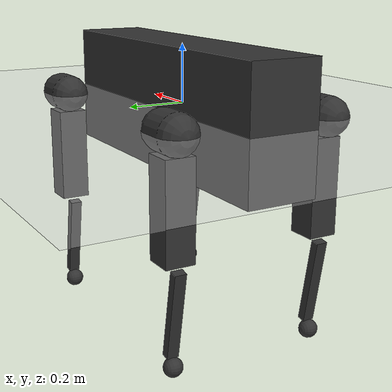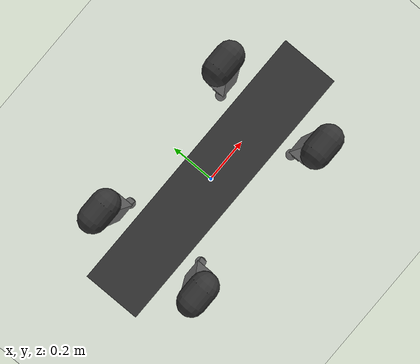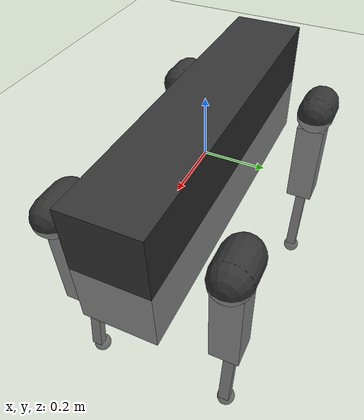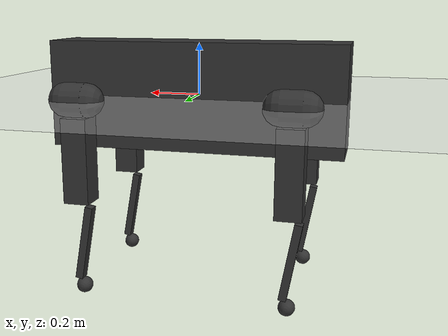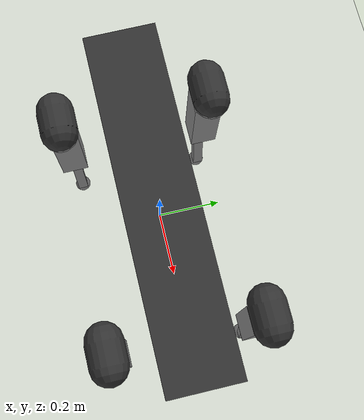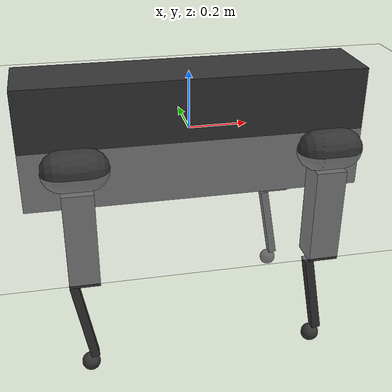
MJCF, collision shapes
<mujoco model="hyqreal2 scene">
      <include file="hyqreal2.xml"/>

      <statistic center="0 0 0.1" extent="0.8"/>

      <visual>
            <headlight diffuse="0.4 0.4 0.4" ambient="0.25 0.25 0.25" specular="0.25 0.25 0.25"/>
            <rgba haze="0.99 0.99 0.99 1"/>
            <global azimuth="-130" elevation="-20"/>
      </visual>
      <asset>
            <texture
                  type="skybox"
                  builtin="gradient"
                  rgb1="0.99 0.99 0.99"
                  rgb2="0.99 0.99 0.99"
                  width="512"
                  height="3072"
            />
            <texture
                  type="2d"
                  name="groundplane"
                  builtin="checker"
                  mark="edge"
                  rgb1="0.93 0.93 0.93"
                  rgb2="0.93 0.93 0.93"
                  markrgb="0 0 0"
                  width="250"
                  height="250"
            />
            <material name="groundplane" texture="groundplane" texuniform="true" texrepeat="5 5" reflectance="0.0"/>

      </asset>

      <worldbody>
            <light pos="0 0 5.0" dir="0 0 -1" directional="true" castshadow="false"/>

            <geom name="floor" size="0 0 0.05" type="plane" material="groundplane"/>
      </worldbody>
</mujoco>

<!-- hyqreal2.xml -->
<mujoco model="hyqreal2_description">
  <compiler angle="radian"/>

  <default>
      <joint damping="0.6" armature="0.01" frictionloss="0.2"/>

      <default class="visual">
          <geom type="mesh" contype="0" conaffinity="0" group="2"/>
      </default>

      <default class="collision">
          <geom group="3" rgba="0.2 0.2 0.2 0.5"/>
      </default>

  </default>

  <asset>
    <mesh name="torso" file="assets/torso.stl" scale="0.001 0.001 0.001"/>
    <mesh name="upper_leg_visual" file="assets/upper_leg_visual.stl" scale="0.001 0.001 0.001"/>
    <mesh name="lower_leg_visual" file="assets/lower_leg_visual.stl" scale="0.001 0.001 0.001"/>
    <mesh name="upper_leg_visual_mirrored" file="assets/upper_leg_visual_mirrored.stl" scale="0.001 0.001 0.001"/>
  </asset>

  <worldbody>
    <body name="base">
      <inertial pos="0.0015 0.0019 -0.0014" quat="-0.0153338 0.706671 -0.0152992 0.70721" mass="83.07" diaginertia="9.46 9.36 2.42"/>
      <joint name="floating_base" type="free" limited="false" actuatorfrclimited="false"/>

      <!-- base visual and collision -->
      <geom class="visual" type="mesh" mesh="torso" pos="0 0 0" quat="0 0 0 1" rgba="0.3 0.3 0.3 1"/>
      <geom class="collision" type="box" size="0.58 0.12 0.21"/>

      <!-- pos="0.4042 0.1505 0" -->
      <body name="FL_hip" pos="0.4042 0.1005 0" quat="0 0.707107 0 -0.707107">
        <inertial pos="-0.0291805 -0.0025707 0.0009034" quat="0.633323 0.721694 0.0652678 0.271663" mass="5.07" diaginertia="0.00531613 0.00492843 0.0047808"/>
        <joint name="FL_hip_joint" pos="0 0 0" axis="0 0 1" range="-0.733038 0.401426" actuatorfrcrange="-150 150"/>

        <!-- FL hip collision -->
        <geom class="collision" type="capsule" size="0.066 0.0409" pos="0 -0.17 0"/>

        <body name="FL_thigh" pos="0 -0.1636 0" quat="0.707107 0.707107 0 0">
          <inertial pos="0.0659 0.0099 -0.0426" quat="0.332192 0.679861 0.348926 0.55289" mass="4.627" diaginertia="0.0841688 0.0797647 0.0139666"/>
          <joint name="FL_thigh_joint" pos="0 0 0" axis="0 0 1" range="0.261799 2.18166" actuatorfrcrange="-250 250"/>

          <!-- FL thigh visual and collision -->
          <geom class="visual" type="mesh" mesh="upper_leg_visual" rgba="1 0.64 0 1"/>
          <geom class="collision" type="box" size="0.165 0.05 0.05" pos="0.23 0 0."/>

          <body name="FL_calf" pos="0.363 0 0">
            <inertial pos="0.273618 -0.00998183 2.57963e-05" quat="0.00662124 0.707 -0.00655672 0.707152" mass="1.2089" diaginertia="0.0483041 0.047405 0.00115536"/>
            <joint name="FL_calf_joint" pos="0 0 0" axis="0 0 1" range="-2.77001 -0.669857" actuatorfrcrange="-350 350"/>

            <!-- FL calf visual and collision -->
            <geom class="visual" type="mesh" mesh="lower_leg_visual" rgba="0.3 0.3 0.3 1"/>
            <geom class="collision" type="box" size="0.15 0.015 0.02" pos="0.2 0.01 0." quat="0.9962 0 0 -0.0872" />

            <body name="FL_foot" pos="0.38 0 0">
                <inertial pos="0 0 0" mass="0.02" diaginertia="8.192e-06 8.192e-06 8.192e-06"/>
                <!-- FL_foot only collision -->
                <geom class="collision" type="sphere" name="FL" size="0.032"/>
            </body>
          </body>
        </body>
      </body>

      <body name="FR_hip" pos="0.4042 -0.1005 0" quat="0.707107 0 0.707107 0">
        <inertial pos="-0.0291805 -0.0025707 0.0009034" quat="0.633323 0.721694 0.0652678 0.271663" mass="5.07" diaginertia="0.00531613 0.00492843 0.0047808"/>
        <joint name="FR_hip_joint" pos="0 0 0" axis="0 0 1" range="-0.733038 0.401426" actuatorfrcrange="-150 150"/>

        <!-- FR hip collision -->
        <geom class="collision" type="capsule" size="0.066 0.0409" pos="0 -0.17 0"/>

        <body name="FR_thigh" pos="0 -0.1636 0" quat="0.707107 -0.707107 0 0">
          <inertial pos="0.0659 0.0099 0.0426" quat="0.679861 0.332192 0.55289 0.348926" mass="4.627" diaginertia="0.0841688 0.0797647 0.0139666"/>
          <joint name="FR_thigh_joint" pos="0 0 0" axis="0 0 1" range="0.261799 2.18166" actuatorfrcrange="-250 250"/>

          <!-- FR thigh visual and collision -->
          <geom class="visual" type="mesh" mesh="upper_leg_visual_mirrored" rgba="1 0.64 0 1"/>
          <geom class="collision" type="box" size="0.165 0.05 0.05" pos="0.23 0 0."/>

          <body name="FR_calf" pos="0.363 0 0">
            <inertial pos="0.273618 -0.00998183 2.57963e-05" quat="0.00662124 0.707 -0.00655672 0.707152" mass="1.2089" diaginertia="0.0483041 0.047405 0.00115536"/>
            <joint name="FR_calf_joint" pos="0 0 0" axis="0 0 1" range="-2.77001 -0.669857" actuatorfrcrange="-350 350"/>

            <!-- FR calf visual and collision -->
            <geom class="visual" type="mesh" mesh="lower_leg_visual" rgba="0.3 0.3 0.3 1"/>
            <geom class="collision" type="box" size="0.15 0.015 0.02" pos="0.2 0.01 0." quat="0.9962 0 0 -0.0872" />

            <body name="FR_foot" pos="0.38 0 0">
                <inertial pos="0 0 0" mass="0.02" diaginertia="8.192e-06 8.192e-06 8.192e-06"/>
                <!-- FR_foot only collision -->
                <geom class="collision" type="sphere" name="FR" size="0.032"/>
            </body>
          </body>
        </body>
      </body>

      <body name="RL_hip" pos="-0.4042 0.1005 0" quat="0 0.707107 0 -0.707107">
        <inertial pos="-0.0291805 -0.0025707 0.0009034" quat="0.633323 0.721694 0.0652678 0.271663" mass="5.07" diaginertia="0.00531613 0.00492843 0.0047808"/>
        <joint name="RL_hip_joint" pos="0 0 0" axis="0 0 1" range="-0.733038 0.401426" actuatorfrcrange="-150 150"/>

        <!-- RL hip collision -->
        <geom class="collision" type="capsule" size="0.066 0.0409" pos="0 -0.17 0"/>

        <body name="RL_thigh" pos="0 -0.1636 0" quat="0.707107 0.707107 0 0">
          <inertial pos="0.0659 0.0099 -0.0426" quat="0.332192 0.679861 0.348926 0.55289" mass="4.627" diaginertia="0.0841688 0.0797647 0.0139666"/>
          <joint name="RL_thigh_joint" pos="0 0 0" axis="0 0 1" range="0.261799 2.18166" actuatorfrcrange="-250 250"/>

          <!-- RL thigh collision -->
          <geom class="visual" type="mesh" mesh="upper_leg_visual" rgba="1 0.64 0 1"/>
          <geom class="collision" type="box" size="0.165 0.05 0.05" pos="0.23 0 0."/>

          <body name="RL_calf" pos="0.363 0 0">
            <inertial pos="0.273618 -0.00998183 2.57963e-05" quat="0.00662124 0.707 -0.00655672 0.707152" mass="1.2089" diaginertia="0.0483041 0.047405 0.00115536"/>
            <joint name="RL_calf_joint" pos="0 0 0" axis="0 0 1" range="-2.77001 -0.669857" actuatorfrcrange="-350 350"/>

            <!-- RL calf visual and collision -->
            <geom class="visual" type="mesh" mesh="lower_leg_visual" rgba="0.3 0.3 0.3 1"/>
            <geom class="collision" type="box" size="0.15 0.015 0.02" pos="0.2 0.01 0." quat="0.9962 0 0 -0.0872" />

            <body name="RL_foot" pos="0.38 0 0">
                <inertial pos="0 0 0" mass="0.02" diaginertia="8.192e-06 8.192e-06 8.192e-06"/>
                <!-- RL_foot only collision -->
                <geom class="collision" type="sphere" name="RL" size="0.032"/>
            </body>
          </body>
        </body>
      </body>

      <body name="RR_hip" pos="-0.4042 -0.1005 0" quat="0.707107 0 0.707107 0">
        <inertial pos="-0.0291805 -0.0025707 0.0009034" quat="0.633323 0.721694 0.0652678 0.271663" mass="5.07" diaginertia="0.00531613 0.00492843 0.0047808"/>
        <joint name="RR_hip_joint" pos="0 0 0" axis="0 0 1" range="-0.733038 0.401426" actuatorfrcrange="-150 150"/>

        <!-- RR hip collision -->
        <geom class="collision" type="capsule" size="0.066 0.0409" pos="0 -0.17 0"/>

        <body name="RR_thigh" pos="0 -0.1636 0" quat="0.707107 -0.707107 0 0">
          <inertial pos="0.0659 0.0099 0.0426" quat="0.679861 0.332192 0.55289 0.348926" mass="4.627" diaginertia="0.0841688 0.0797647 0.0139666"/>
          <joint name="RR_thigh_joint" pos="0 0 0" axis="0 0 1" range="0.261799 2.18166" actuatorfrcrange="-250 250"/>

          <!-- RR thigh collision -->
          <geom class="visual" type="mesh" mesh="upper_leg_visual_mirrored" rgba="1 0.64 0 1"/>
          <geom class="collision" type="box" size="0.165 0.05 0.05" pos="0.23 0 0."/>

          <body name="RR_calf" pos="0.363 0 0">
            <inertial pos="0.273618 -0.00998183 2.57963e-05" quat="0.00662124 0.707 -0.00655672 0.707152" mass="1.2089" diaginertia="0.0483041 0.047405 0.00115536"/>
            <joint name="RR_calf_joint" pos="0 0 0" axis="0 0 1" range="-2.77001 -0.669857" actuatorfrcrange="-350 350"/>

            <!-- RR calf visual and collision -->
            <geom class="visual" type="mesh" mesh="lower_leg_visual" rgba="0.3 0.3 0.3 1"/>
            <geom class="collision" type="box" size="0.15 0.015 0.02" pos="0.2 0.01 0." quat="0.9962 0 0 -0.0872" />

            <body name="RR_foot" pos="0.38 0 0">
                <inertial pos="0 0 0" mass="0.02" diaginertia="8.192e-06 8.192e-06 8.192e-06"/>
                <!-- RR_foot only collision -->
                <geom class="collision" type="sphere" name="RR" size="0.032"/>
            </body>
          </body>
        </body>
      </body>
    </body>
  </worldbody>

  <actuator>
        <motor name="FL_hip" ctrlrange="-173.0 173.0" joint="FL_hip_joint"/>
        <motor name="FL_thigh" ctrlrange="-208 208" joint="FL_thigh_joint"/>
        <motor name="FL_calf" ctrlrange="-249 249" joint="FL_calf_joint"/>

        <motor name="FR_hip" ctrlrange="-173.0 173.0" joint="FR_hip_joint"/>
        <motor name="FR_thigh" ctrlrange="-208 208" joint="FR_thigh_joint"/>
        <motor name="FR_calf" ctrlrange="-249 249" joint="FR_calf_joint"/>

        <motor name="RL_hip" ctrlrange="-173.0 173.0" joint="RL_hip_joint"/>
        <motor name="RL_thigh" ctrlrange="-208 208" joint="RL_thigh_joint"/>
        <motor name="RL_calf" ctrlrange="-249 249" joint="RL_calf_joint"/>

        <motor name="RR_hip" ctrlrange="-173.0 173.0" joint="RR_hip_joint"/>
        <motor name="RR_thigh" ctrlrange="-208 208" joint="RR_thigh_joint"/>
        <motor name="RR_calf" ctrlrange="-249 249" joint="RR_calf_joint"/>
  </actuator>

  <keyframe>
        <key name="home" qpos="0 0 0.5 1 0 0 0 0 0.9 -1.8 0 0.9 -1.8 0 0.9 -1.8 0 0.9 -1.8"/>
        <key name="down" qpos="0 0 0.05 1 0 0 0 0.0 1.21 -2.794 0.0 1.21 -2.794 0.0 1.21 -2.794 0.0 1.21 -2.794"/>
  </keyframe>
</mujoco>
